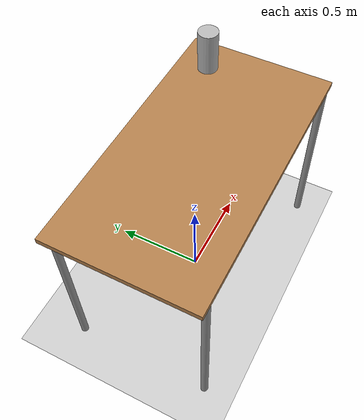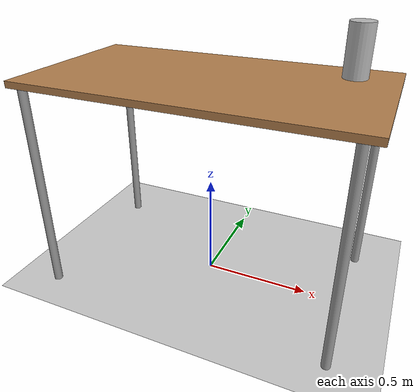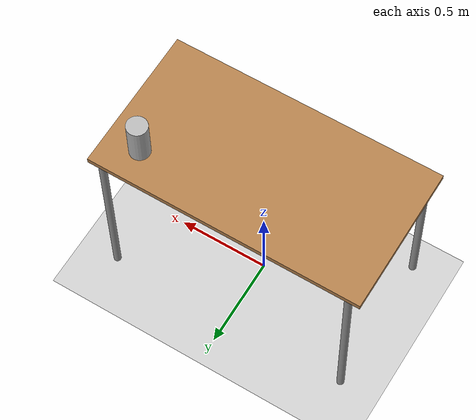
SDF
<sdf version="1.7">
 <world name="default">
  <light name="sun" type="directional">
   <pose>0 0 10 0 -0 0</pose>
   <diffuse>0.8 0.8 0.8 1</diffuse>
   <specular>0.2 0.2 0.2 1</specular>
   <attenuation>
    <range>1000</range>
    <constant>0.9</constant>
    <linear>0.01</linear>
    <quadratic>0.001</quadratic>
   </attenuation>
   <direction>-0.5 0.1 -0.9</direction>
   <spot><inner_angle>0</inner_angle><outer_angle>0</outer_angle><falloff>0</falloff></spot>
  </light>
  <model name="ground_plane">
   <static>1</static>
   <link name="link">
    <collision name="collision">
     <geometry><plane><normal>0 0 1</normal><size>100 100</size></plane></geometry>
     <surface><friction><ode><mu>100</mu><mu2>50</mu2></ode></friction></surface>
    </collision>
    <visual name="visual">
     <cast_shadows>0</cast_shadows>
     <geometry><plane><normal>0 0 1</normal><size>100 100</size></plane></geometry>
     <material>
      <script><uri>file://media/materials/scripts/gazebo.material</uri><name>Gazebo/Grey</name></script>
     </material>
    </visual>
   </link>
  </model>
  <gravity>0 0 -9.8</gravity>
  <magnetic_field>6e-06 2.3e-05 -4.2e-05</magnetic_field>
  <atmosphere type="adiabatic"/>
  <physics type="ode">
   <max_step_size>0.001</max_step_size>
   <real_time_factor>1</real_time_factor>
   <real_time_update_rate>1000</real_time_update_rate>
  </physics>
  <scene><ambient>0.4 0.4 0.4 1</ambient><background>0.7 0.7 0.7 1</background><shadows>1</shadows></scene>
  <spherical_coordinates>
   <surface_model>EARTH_WGS84</surface_model>
   <latitude_deg>0</latitude_deg>
   <longitude_deg>0</longitude_deg>
   <elevation>0</elevation>
   <heading_deg>0</heading_deg>
  </spherical_coordinates>
  <model name="table">
   <static>1</static>
   <link name="table_link">
    <collision name="surface">
     <pose>0 0 1 0 -0 0</pose>
     <geometry><box><size>1.5 0.8 0.03</size></box></geometry>
     <surface><friction><ode><mu>0.6</mu><mu2>0.6</mu2></ode></friction></surface>
    </collision>
    <visual name="visual1">
     <pose>0 0 1 0 -0 0</pose>
     <geometry><box><size>1.5 0.8 0.03</size></box></geometry>
     <material>
      <script><uri>file://media/materials/scripts/gazebo.material</uri><name>Gazebo/Wood</name></script>
     </material>
    </visual>
    <collision name="front_left_leg">
     <pose>0.68 0.38 0.5 0 -0 0</pose>
     <geometry><cylinder><radius>0.02</radius><length>1</length></cylinder></geometry>
    </collision>
    <visual name="vfront_left_leg">
     <pose>0.68 0.38 0.5 0 -0 0</pose>
     <geometry><cylinder><radius>0.02</radius><length>1</length></cylinder></geometry>
     <material>
      <script><uri>file://media/materials/scripts/gazebo.material</uri><name>Gazebo/Grey</name></script>
     </material>
    </visual>
    <collision name="front_right_leg">
     <pose>0.68 -0.38 0.5 0 -0 0</pose>
     <geometry><cylinder><radius>0.02</radius><length>1</length></cylinder></geometry>
    </collision>
    <visual name="vfront_right_leg">
     <pose>0.68 -0.38 0.5 0 -0 0</pose>
     <geometry><cylinder><radius>0.02</radius><length>1</length></cylinder></geometry>
     <material>
      <script><uri>file://media/materials/scripts/gazebo.material</uri><name>Gazebo/Grey</name></script>
     </material>
    </visual>
    <collision name="back_right_leg">
     <pose>-0.68 -0.38 0.5 0 -0 0</pose>
     <geometry><cylinder><radius>0.02</radius><length>1</length></cylinder></geometry>
    </collision>
    <visual name="vback_right_leg">
     <pose>-0.68 -0.38 0.5 0 -0 0</pose>
     <geometry><cylinder><radius>0.02</radius><length>1</length></cylinder></geometry>
     <material>
      <script><uri>file://media/materials/scripts/gazebo.material</uri><name>Gazebo/Grey</name></script>
     </material>
    </visual>
    <collision name="back_left_leg">
     <pose>-0.68 0.38 0.5 0 -0 0</pose>
     <geometry><cylinder><radius>0.02</radius><length>1</length></cylinder></geometry>
    </collision>
    <visual name="vback_left_leg">
     <pose>-0.68 0.38 0.5 0 -0 0</pose>
     <geometry><cylinder><radius>0.02</radius><length>1</length></cylinder></geometry>
     <material>
      <script><uri>file://media/materials/scripts/gazebo.material</uri><name>Gazebo/Grey</name></script>
     </material>
    </visual>
   </link>
   <pose>0.007125 -0.019721 0 0 -0 0</pose>
  </model>
  <model name="beer">
   <link name="beer_link">
    <pose>0 0 0.115 0 -0 0</pose>
    <inertial>
     <mass>0.39</mass>
     <inertia><ixx>0.00058</ixx><ixy>0</ixy><ixz>0</ixz><iyy>0.00058</iyy><iyz>0</iyz><izz>0.00019</izz></inertia>
    </inertial>
    <collision name="collision">
     <geometry><cylinder><radius>0.055</radius><length>0.23</length></cylinder></geometry>
    </collision>
    <visual name="visual">
     <geometry><cylinder><radius>0.055</radius><length>0.23</length></cylinder></geometry>
     <material>
      <script>
       <uri>model://beer/materials/scripts</uri>
       <uri>model://beer/materials/textures</uri>
       <name>Beer/Diffuse</name>
      </script>
     </material>
    </visual>
   </link>
   <pose>0.56653 0.211427 1.01499 -1.2e-05 -2.2e-05 0.001111</pose>
  </model>
  <model name="camera">
   <pose>0.429927 -0.02592 2.5965 3.14159 1.5707963267948966 3.14156</pose>
   <static>1</static>
   <gravity>0</gravity>
   <link name="camera_link">
    <sensor type="camera" name="camera1">
     <update_rate>60</update_rate>
     <visualize>true</visualize>
     <camera name="head">
      <horizontal_fov>1.3962634</horizontal_fov>
      <image><width>640</width><height>480</height><format>R8G8B8</format></image>
      <clip><near>0.02</near><far>300</far></clip>
      <noise><type>gaussian</type><mean>0.0</mean><stddev>0.007</stddev></noise>
     </camera>
     <plugin name="camera_controller" filename="libgazebo_ros_camera.so">
      <ros>
       <namespace>demo_cam</namespace>
       <argument>image_raw:=image_demo</argument>
       <argument>camera_info:=camera_info_demo</argument>
      </ros>
     </plugin>
    </sensor>
   </link>
  </model>
 </world>
</sdf>
